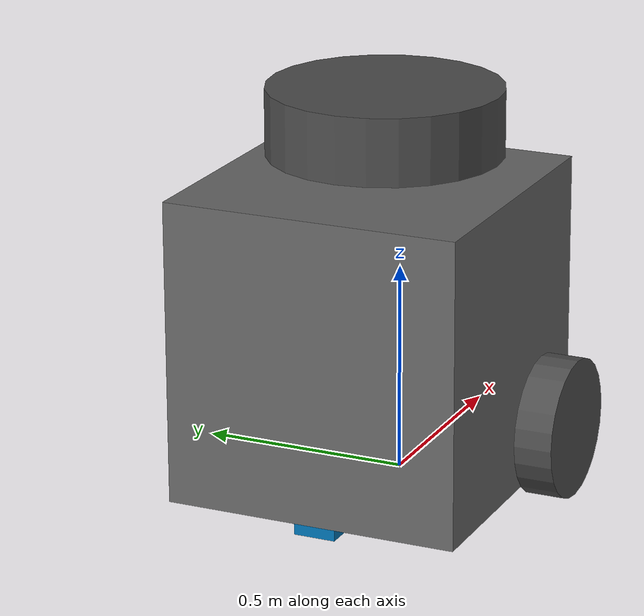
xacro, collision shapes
<?xml version="1.0" ?>
<robot name="turtlebot3_burger_cam"
  xmlns:xacro="http://ros.org">

  <material name="black">
      <color rgba="0.0 0.0 0.0 1.0"/>
  </material>

  <material name="dark">
    <color rgba="0.3 0.3 0.3 1.0"/>
  </material>

  <material name="light_black">
    <color rgba="0.4 0.4 0.4 1.0"/>
  </material>

  <material name="blue">
    <color rgba="0.0 0.0 0.8 1.0"/>
  </material>

  <material name="green">
    <color rgba="0.0 0.8 0.0 1.0"/>
  </material>

  <material name="grey">
    <color rgba="0.5 0.5 0.5 1.0"/>
  </material>

  <material name="orange">
    <color rgba="1.0 0.4235 0.0392 1.0"/>
  </material>

  <material name="brown">
    <color rgba="0.8706 0.8118 0.7647 1.0"/>
  </material>

  <material name="red">
    <color rgba="0.8 0.0 0.0 1.0"/>
  </material>

  <material name="white">
    <color rgba="1.0 1.0 1.0 1.0"/>
  </material>

  <link name="base_footprint"/>

  <joint name="base_joint" type="fixed">
    <parent link="base_footprint"/>
    <child link="base_link"/>
    <!-- Z origin shifted up from 0.010 to 0.050 -->
    <origin xyz="0.0 0.0 0.050" rpy="0 0 0"/>
  </joint>

  <link name="base_link">
    <visual>
      <!-- X position scaled from -0.032 to -0.160 -->
      <origin xyz="-0.160 0 0.0" rpy="0 0 0"/>
      <geometry>
        <!-- Mesh visual scale factor increased from 0.001 to 0.005 -->
        <mesh filename="file://$(find amar_description)/models/turtlebot3_common/meshes/bases/burger_base.stl" scale="0.005 0.005 0.005"/>
      </geometry>
      <material name="light_black"/>
    </visual>

    <collision>
      <!-- Collision origin box extents scaled 5x -->
      <origin xyz="-0.160 0 0.350" rpy="0 0 0"/>
      <geometry>
        <box size="0.700 0.700 0.715"/>
      </geometry>
    </collision>

    <inertial>
      <origin xyz="0 0 0" rpy="0 0 0"/>
      <!-- Mass scaled realistically for stability (~15x) -->
      <mass value="12.38"/>
      <inertia ixx="3.31e-02" ixy="-1.84e-04" ixz="5.24e-04" iyy="3.17e-02" iyz="-7.51e-05" izz="3.00e-02" />
    </inertial>
  </link>

  <joint name="wheel_left_joint" type="continuous">
    <parent link="base_link"/>
    <child link="wheel_left_link"/>
    <!-- Joint attachment coordinates scaled 5x -->
    <origin xyz="0.0 0.400 0.115" rpy="-1.57 0 0"/>
    <axis xyz="0 0 1"/>
  </joint>

  <link name="wheel_left_link">
    <visual>
      <origin xyz="0 0 0" rpy="1.57 0 0"/>
      <geometry>
        <mesh filename="file://$(find amar_description)/models/turtlebot3_common/meshes/wheels/left_tire.stl" scale="0.005 0.005 0.005"/>
      </geometry>
      <material name="dark"/>
    </visual>

    <collision>
      <origin xyz="0 0 0" rpy="0 0 0"/>
      <geometry>
        <!-- Cylinder metrics: length 0.09, radius 0.165 -->
        <cylinder length="0.090" radius="0.165"/>
      </geometry>
    </collision>

    <inertial>
      <origin xyz="0 0 0" />
      <mass value="0.427" />
      <inertia ixx="1.67e-04" ixy="-6.35e-10" ixz="-8.90e-08" iyy="1.67e-04" iyz="-2.16e-10" izz="3.10e-04" />
    </inertial>
  </link>

  <joint name="wheel_right_joint" type="continuous">
    <parent link="base_link"/>
    <child link="wheel_right_link"/>
    <!-- Joint attachment coordinates scaled 5x -->
    <origin xyz="0.0 -0.400 0.115" rpy="-1.57 0 0"/>
    <axis xyz="0 0 1"/>
  </joint>

  <link name="wheel_right_link">
    <visual>
      <origin xyz="0 0 0" rpy="1.57 0 0"/>
      <geometry>
        <mesh filename="file://$(find amar_description)/models/turtlebot3_common/meshes/wheels/right_tire.stl" scale="0.005 0.005 0.005"/>
      </geometry>
      <material name="dark"/>
    </visual>

    <collision>
      <origin xyz="0 0 0" rpy="0 0 0"/>
      <geometry>
        <cylinder length="0.090" radius="0.165"/>
      </geometry>
    </collision>

    <inertial>
      <origin xyz="0 0 0" />
      <mass value="0.427" />
      <inertia ixx="1.67e-04" ixy="-6.35e-10" ixz="-8.90e-08" iyy="1.67e-04" iyz="-2.16e-10" izz="3.10e-04" />
    </inertial>
  </link>

  <joint name="caster_back_joint" type="fixed">
    <parent link="base_link"/>
    <child link="caster_back_link"/>
    <!-- Coordinates scaled 5x -->
    <origin xyz="-0.405 0 -0.020" rpy="-1.57 0 0"/>
  </joint>

  <link name="caster_back_link">
    <collision>
      <origin xyz="0 0.005 0" rpy="0 0 0"/>
      <geometry>
        <box size="0.150 0.045 0.100"/>
      </geometry>
    </collision>

    <inertial>
      <origin xyz="0 0 0" />
      <mass value="0.075" />
      <inertia ixx="0.015" ixy="0.0" ixz="0.0" iyy="0.015" iyz="0.0" izz="0.015" />
    </inertial>
  </link>

  <joint name="imu_joint" type="fixed">
    <parent link="base_link"/>
    <child link="imu_link"/>
    <origin xyz="-0.160 0 0.340" rpy="0 0 0"/>
  </joint>

  <link name="imu_link"/>

  <joint name="scan_joint" type="fixed">
    <parent link="base_link"/>
    <child link="base_scan"/>
    <origin xyz="-0.160 0 0.860" rpy="0 0 0"/>
  </joint>

  <link name="base_scan">
    <visual>
      <origin xyz="0 0 0.0" rpy="0 0 0"/>
      <geometry>
        <mesh filename="file://$(find amar_description)/models/turtlebot3_common/meshes/sensors/lds.stl" scale="0.005 0.005 0.005"/>
      </geometry>
      <material name="dark"/>
    </visual>

    <collision>
      <origin xyz="0.075 0 -0.0325" rpy="0 0 0"/>
      <geometry>
        <cylinder length="0.1575" radius="0.275"/>
      </geometry>
    </collision>

    <inertial>
      <mass value="1.71" />
      <origin xyz="0 0 0" />
      <inertia ixx="0.015" ixy="0.0" ixz="0.0" iyy="0.015" iyz="0.0" izz="0.015" />
    </inertial>
  </link>

  <joint name="camera_joint" type="fixed">
    <origin xyz="0.200 -0.000 0.550" rpy="0 0 0"/>
    <parent link="base_link"/>
    <child link="camera_link"/>
  </joint>

  <link name="camera_link">
    <collision>
      <origin xyz="0.025 0.000 0.065" rpy="0 0 0"/>
      <geometry>
        <box size="0.075 0.150 0.135"/>
      </geometry>
    </collision>
  </link>

  <joint name="camera_rgb_joint" type="fixed">
    <origin xyz="0.015 0.000 0.045" rpy="0 0 0"/>
    <parent link="camera_link"/>
    <child link="camera_rgb_frame"/>
  </joint>
  <link name="camera_rgb_frame"/>

  <joint name="camera_rgb_optical_joint" type="fixed">
    <origin xyz="0 0 0" rpy="-1.5707 0 -1.57"/>
    <parent link="camera_rgb_frame"/>
    <child link="camera_rgb_optical_frame"/>
  </joint>
  <link name="camera_rgb_optical_frame"/>

</robot>
